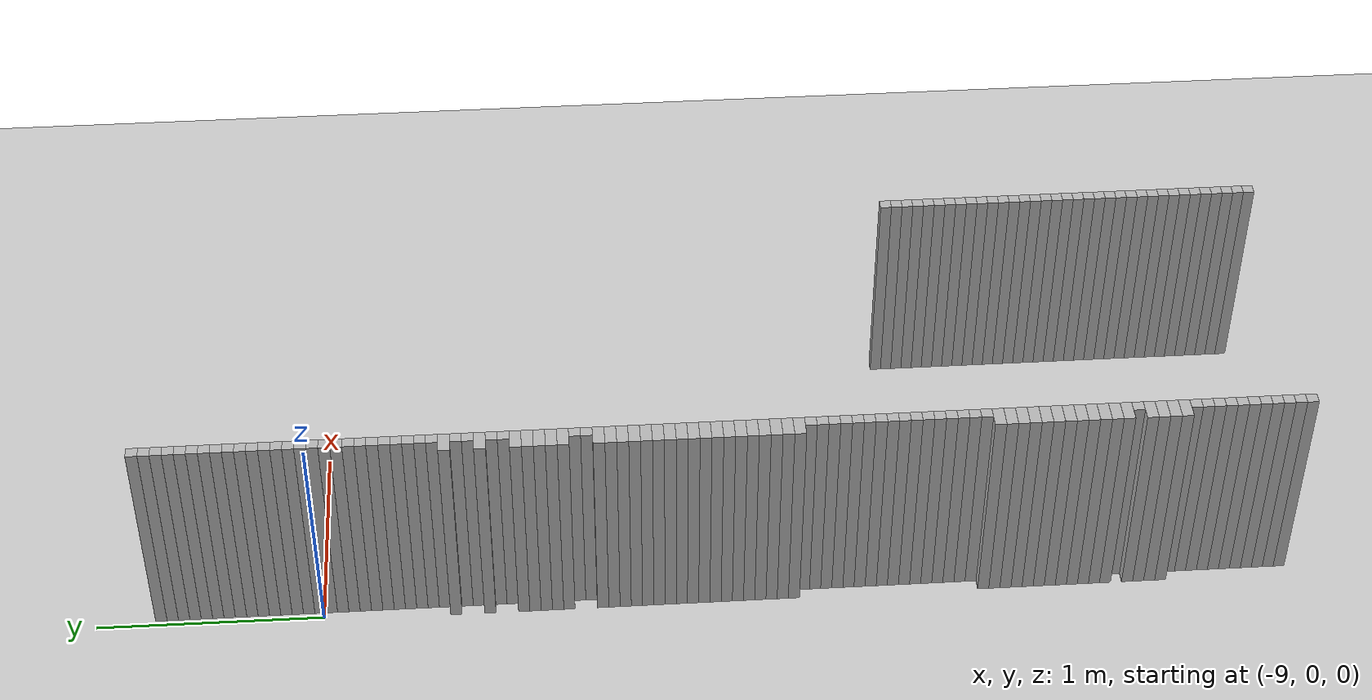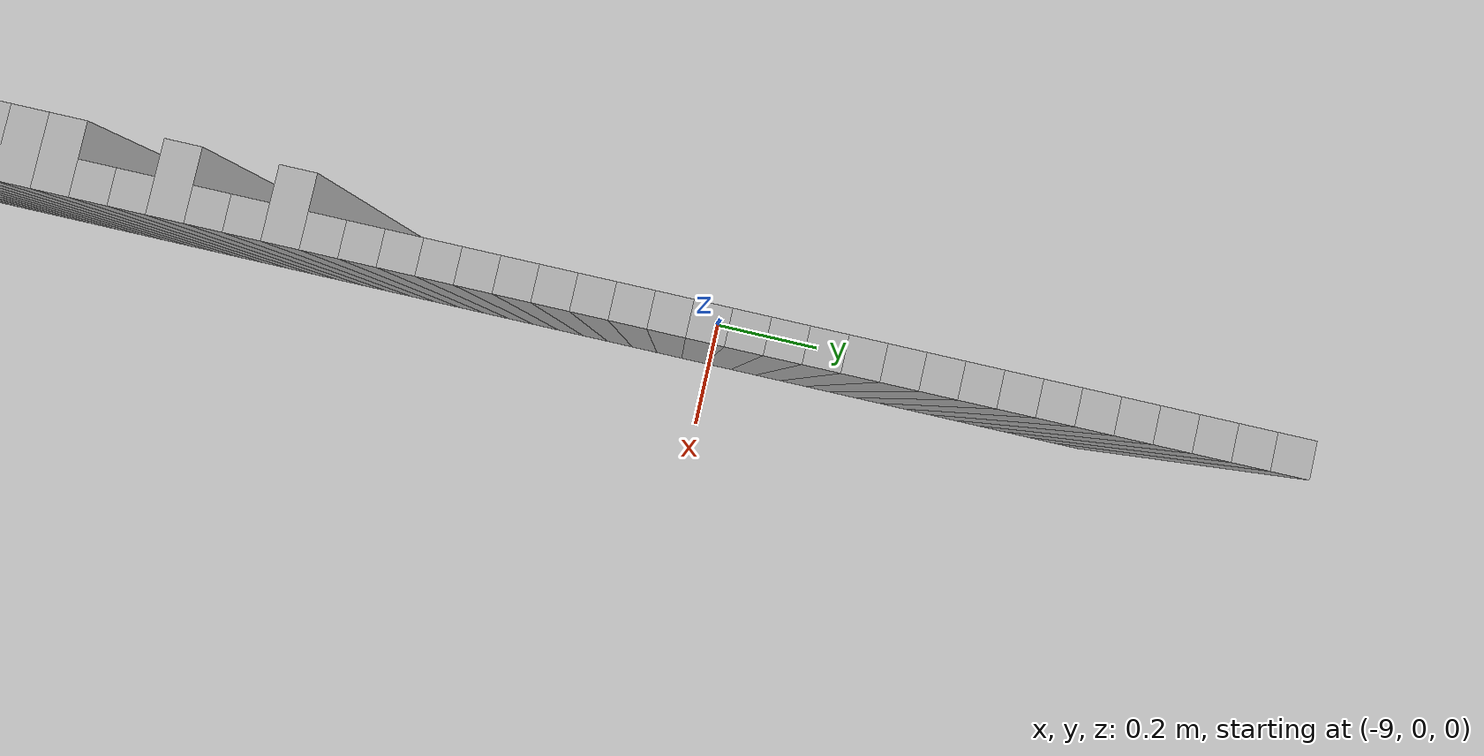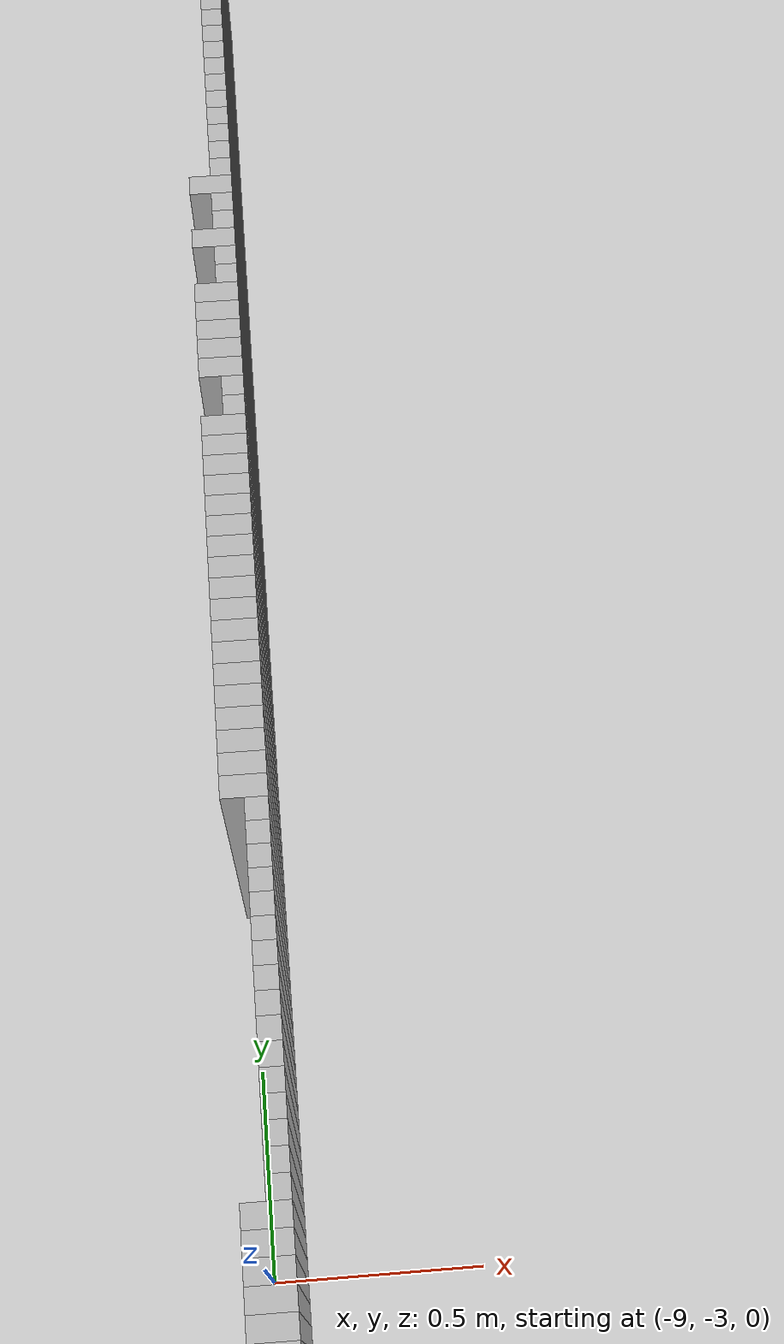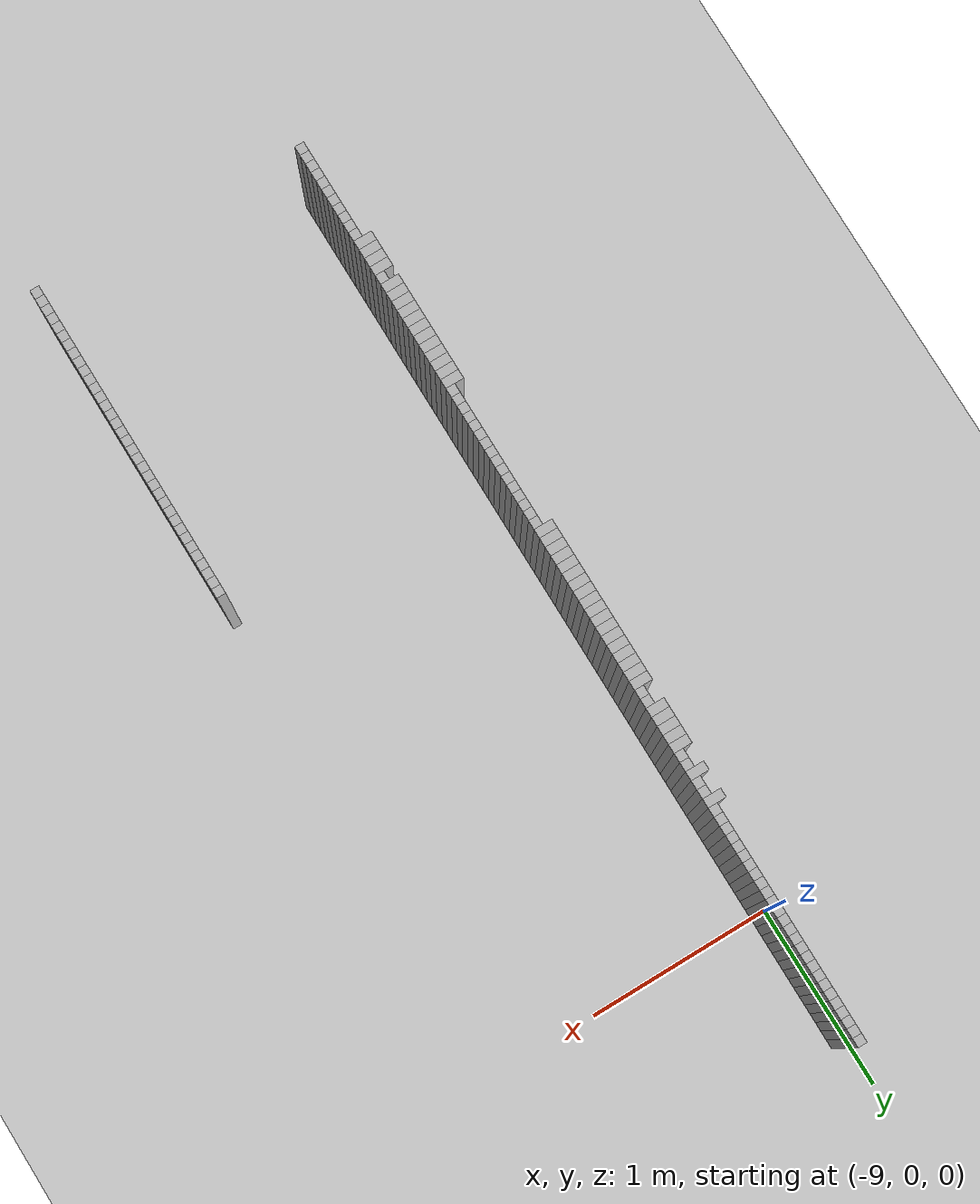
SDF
<sdf version="1.6">
 <world name="udh1_world">
  <include><uri>model://ground_plane</uri></include>
  <include><uri>model://sun</uri></include>
  <model name="wall_1352">
   <static>true</static>
   <pose>-8.945 0.7200000000000006 0.5 0 0 0</pose>
   <link name="link">
    <collision name="col"><geometry><box><size>0.05 0.05 1</size></box></geometry></collision>
    <visual name="vis"><geometry><box><size>0.05 0.05 1</size></box></geometry></visual>
   </link>
  </model>
  <model name="wall_1360">
   <static>true</static>
   <pose>-8.945 0.6699999999999999 0.5 0 0 0</pose>
   <link name="link">
    <collision name="col"><geometry><box><size>0.05 0.05 1</size></box></geometry></collision>
    <visual name="vis"><geometry><box><size>0.05 0.05 1</size></box></geometry></visual>
   </link>
  </model>
  <model name="wall_1368">
   <static>true</static>
   <pose>-8.945 0.6199999999999992 0.5 0 0 0</pose>
   <link name="link">
    <collision name="col"><geometry><box><size>0.05 0.05 1</size></box></geometry></collision>
    <visual name="vis"><geometry><box><size>0.05 0.05 1</size></box></geometry></visual>
   </link>
  </model>
  <model name="wall_1375">
   <static>true</static>
   <pose>-8.945 0.5700000000000003 0.5 0 0 0</pose>
   <link name="link">
    <collision name="col"><geometry><box><size>0.05 0.05 1</size></box></geometry></collision>
    <visual name="vis"><geometry><box><size>0.05 0.05 1</size></box></geometry></visual>
   </link>
  </model>
  <model name="wall_1382">
   <static>true</static>
   <pose>-8.945 0.5199999999999996 0.5 0 0 0</pose>
   <link name="link">
    <collision name="col"><geometry><box><size>0.05 0.05 1</size></box></geometry></collision>
    <visual name="vis"><geometry><box><size>0.05 0.05 1</size></box></geometry></visual>
   </link>
  </model>
  <model name="wall_1388">
   <static>true</static>
   <pose>-8.945 0.47000000000000064 0.5 0 0 0</pose>
   <link name="link">
    <collision name="col"><geometry><box><size>0.05 0.05 1</size></box></geometry></collision>
    <visual name="vis"><geometry><box><size>0.05 0.05 1</size></box></geometry></visual>
   </link>
  </model>
  <model name="wall_1395">
   <static>true</static>
   <pose>-8.945 0.41999999999999993 0.5 0 0 0</pose>
   <link name="link">
    <collision name="col"><geometry><box><size>0.05 0.05 1</size></box></geometry></collision>
    <visual name="vis"><geometry><box><size>0.05 0.05 1</size></box></geometry></visual>
   </link>
  </model>
  <model name="wall_1402">
   <static>true</static>
   <pose>-8.945 0.3699999999999992 0.5 0 0 0</pose>
   <link name="link">
    <collision name="col"><geometry><box><size>0.05 0.05 1</size></box></geometry></collision>
    <visual name="vis"><geometry><box><size>0.05 0.05 1</size></box></geometry></visual>
   </link>
  </model>
  <model name="wall_1409">
   <static>true</static>
   <pose>-8.945 0.3200000000000003 0.5 0 0 0</pose>
   <link name="link">
    <collision name="col"><geometry><box><size>0.05 0.05 1</size></box></geometry></collision>
    <visual name="vis"><geometry><box><size>0.05 0.05 1</size></box></geometry></visual>
   </link>
  </model>
  <model name="wall_1416">
   <static>true</static>
   <pose>-8.945 0.2699999999999996 0.5 0 0 0</pose>
   <link name="link">
    <collision name="col"><geometry><box><size>0.05 0.05 1</size></box></geometry></collision>
    <visual name="vis"><geometry><box><size>0.05 0.05 1</size></box></geometry></visual>
   </link>
  </model>
  <model name="wall_1423">
   <static>true</static>
   <pose>-8.945 0.21999999999999886 0.5 0 0 0</pose>
   <link name="link">
    <collision name="col"><geometry><box><size>0.05 0.05 1</size></box></geometry></collision>
    <visual name="vis"><geometry><box><size>0.05 0.05 1</size></box></geometry></visual>
   </link>
  </model>
  <model name="wall_1430">
   <static>true</static>
   <pose>-8.945 0.16999999999999993 0.5 0 0 0</pose>
   <link name="link">
    <collision name="col"><geometry><box><size>0.05 0.05 1</size></box></geometry></collision>
    <visual name="vis"><geometry><box><size>0.05 0.05 1</size></box></geometry></visual>
   </link>
  </model>
  <model name="wall_1437">
   <static>true</static>
   <pose>-8.945 0.11999999999999922 0.5 0 0 0</pose>
   <link name="link">
    <collision name="col"><geometry><box><size>0.05 0.05 1</size></box></geometry></collision>
    <visual name="vis"><geometry><box><size>0.05 0.05 1</size></box></geometry></visual>
   </link>
  </model>
  <model name="wall_1444">
   <static>true</static>
   <pose>-8.945 0.07000000000000028 0.5 0 0 0</pose>
   <link name="link">
    <collision name="col"><geometry><box><size>0.05 0.05 1</size></box></geometry></collision>
    <visual name="vis"><geometry><box><size>0.05 0.05 1</size></box></geometry></visual>
   </link>
  </model>
  <model name="wall_1453">
   <static>true</static>
   <pose>-8.945 0.019999999999999574 0.5 0 0 0</pose>
   <link name="link">
    <collision name="col"><geometry><box><size>0.05 0.05 1</size></box></geometry></collision>
    <visual name="vis"><geometry><box><size>0.05 0.05 1</size></box></geometry></visual>
   </link>
  </model>
  <model name="wall_1468">
   <static>true</static>
   <pose>-8.945 -0.030000000000001137 0.5 0 0 0</pose>
   <link name="link">
    <collision name="col"><geometry><box><size>0.05 0.05 1</size></box></geometry></collision>
    <visual name="vis"><geometry><box><size>0.05 0.05 1</size></box></geometry></visual>
   </link>
  </model>
  <model name="wall_1475">
   <static>true</static>
   <pose>-8.945 -0.08000000000000007 0.5 0 0 0</pose>
   <link name="link">
    <collision name="col"><geometry><box><size>0.05 0.05 1</size></box></geometry></collision>
    <visual name="vis"><geometry><box><size>0.05 0.05 1</size></box></geometry></visual>
   </link>
  </model>
  <model name="wall_1482">
   <static>true</static>
   <pose>-8.945 -0.13000000000000078 0.5 0 0 0</pose>
   <link name="link">
    <collision name="col"><geometry><box><size>0.05 0.05 1</size></box></geometry></collision>
    <visual name="vis"><geometry><box><size>0.05 0.05 1</size></box></geometry></visual>
   </link>
  </model>
  <model name="wall_1488">
   <static>true</static>
   <pose>-8.945 -0.17999999999999972 0.5 0 0 0</pose>
   <link name="link">
    <collision name="col"><geometry><box><size>0.05 0.05 1</size></box></geometry></collision>
    <visual name="vis"><geometry><box><size>0.05 0.05 1</size></box></geometry></visual>
   </link>
  </model>
  <model name="wall_1494">
   <static>true</static>
   <pose>-8.945 -0.23000000000000043 0.5 0 0 0</pose>
   <link name="link">
    <collision name="col"><geometry><box><size>0.05 0.05 1</size></box></geometry></collision>
    <visual name="vis"><geometry><box><size>0.05 0.05 1</size></box></geometry></visual>
   </link>
  </model>
  <model name="wall_1499">
   <static>true</static>
   <pose>-8.945 -0.28000000000000114 0.5 0 0 0</pose>
   <link name="link">
    <collision name="col"><geometry><box><size>0.05 0.05 1</size></box></geometry></collision>
    <visual name="vis"><geometry><box><size>0.05 0.05 1</size></box></geometry></visual>
   </link>
  </model>
  <model name="wall_1505">
   <static>true</static>
   <pose>-8.945 -0.33000000000000007 0.5 0 0 0</pose>
   <link name="link">
    <collision name="col"><geometry><box><size>0.05 0.05 1</size></box></geometry></collision>
    <visual name="vis"><geometry><box><size>0.05 0.05 1</size></box></geometry></visual>
   </link>
  </model>
  <model name="wall_1511">
   <static>true</static>
   <pose>-8.945 -0.3800000000000008 0.5 0 0 0</pose>
   <link name="link">
    <collision name="col"><geometry><box><size>0.05 0.05 1</size></box></geometry></collision>
    <visual name="vis"><geometry><box><size>0.05 0.05 1</size></box></geometry></visual>
   </link>
  </model>
  <model name="wall_1518">
   <static>true</static>
   <pose>-8.945 -0.4299999999999997 0.5 0 0 0</pose>
   <link name="link">
    <collision name="col"><geometry><box><size>0.05 0.05 1</size></box></geometry></collision>
    <visual name="vis"><geometry><box><size>0.05 0.05 1</size></box></geometry></visual>
   </link>
  </model>
  <model name="wall_1524">
   <static>true</static>
   <pose>-8.945 -0.4800000000000004 0.5 0 0 0</pose>
   <link name="link">
    <collision name="col"><geometry><box><size>0.05 0.05 1</size></box></geometry></collision>
    <visual name="vis"><geometry><box><size>0.05 0.05 1</size></box></geometry></visual>
   </link>
  </model>
  <model name="wall_1530">
   <static>true</static>
   <pose>-8.945 -0.5300000000000011 0.5 0 0 0</pose>
   <link name="link">
    <collision name="col"><geometry><box><size>0.05 0.05 1</size></box></geometry></collision>
    <visual name="vis"><geometry><box><size>0.05 0.05 1</size></box></geometry></visual>
   </link>
  </model>
  <model name="wall_1536">
   <static>true</static>
   <pose>-8.969999999999999 -0.5800000000000001 0.5 0 0 0</pose>
   <link name="link">
    <collision name="col"><geometry><box><size>0.1 0.05 1</size></box></geometry></collision>
    <visual name="vis"><geometry><box><size>0.1 0.05 1</size></box></geometry></visual>
   </link>
  </model>
  <model name="wall_1542">
   <static>true</static>
   <pose>-8.945 -0.6300000000000008 0.5 0 0 0</pose>
   <link name="link">
    <collision name="col"><geometry><box><size>0.05 0.05 1</size></box></geometry></collision>
    <visual name="vis"><geometry><box><size>0.05 0.05 1</size></box></geometry></visual>
   </link>
  </model>
  <model name="wall_1548">
   <static>true</static>
   <pose>-8.945 -0.6799999999999997 0.5 0 0 0</pose>
   <link name="link">
    <collision name="col"><geometry><box><size>0.05 0.05 1</size></box></geometry></collision>
    <visual name="vis"><geometry><box><size>0.05 0.05 1</size></box></geometry></visual>
   </link>
  </model>
  <model name="wall_1554">
   <static>true</static>
   <pose>-8.969999999999999 -0.7300000000000004 0.5 0 0 0</pose>
   <link name="link">
    <collision name="col"><geometry><box><size>0.1 0.05 1</size></box></geometry></collision>
    <visual name="vis"><geometry><box><size>0.1 0.05 1</size></box></geometry></visual>
   </link>
  </model>
  <model name="wall_1560">
   <static>true</static>
   <pose>-8.945 -0.7800000000000011 0.5 0 0 0</pose>
   <link name="link">
    <collision name="col"><geometry><box><size>0.05 0.05 1</size></box></geometry></collision>
    <visual name="vis"><geometry><box><size>0.05 0.05 1</size></box></geometry></visual>
   </link>
  </model>
  <model name="wall_1566">
   <static>true</static>
   <pose>-8.945 -0.8300000000000001 0.5 0 0 0</pose>
   <link name="link">
    <collision name="col"><geometry><box><size>0.05 0.05 1</size></box></geometry></collision>
    <visual name="vis"><geometry><box><size>0.05 0.05 1</size></box></geometry></visual>
   </link>
  </model>
  <model name="wall_1572">
   <static>true</static>
   <pose>-8.969999999999999 -0.8800000000000008 0.5 0 0 0</pose>
   <link name="link">
    <collision name="col"><geometry><box><size>0.1 0.05 1</size></box></geometry></collision>
    <visual name="vis"><geometry><box><size>0.1 0.05 1</size></box></geometry></visual>
   </link>
  </model>
  <model name="wall_1578">
   <static>true</static>
   <pose>-8.969999999999999 -0.9299999999999997 0.5 0 0 0</pose>
   <link name="link">
    <collision name="col"><geometry><box><size>0.1 0.05 1</size></box></geometry></collision>
    <visual name="vis"><geometry><box><size>0.1 0.05 1</size></box></geometry></visual>
   </link>
  </model>
  <model name="wall_1583">
   <static>true</static>
   <pose>-8.969999999999999 -0.9800000000000004 0.5 0 0 0</pose>
   <link name="link">
    <collision name="col"><geometry><box><size>0.1 0.05 1</size></box></geometry></collision>
    <visual name="vis"><geometry><box><size>0.1 0.05 1</size></box></geometry></visual>
   </link>
  </model>
  <model name="wall_1587">
   <static>true</static>
   <pose>-8.969999999999999 -1.0300000000000011 0.5 0 0 0</pose>
   <link name="link">
    <collision name="col"><geometry><box><size>0.1 0.05 1</size></box></geometry></collision>
    <visual name="vis"><geometry><box><size>0.1 0.05 1</size></box></geometry></visual>
   </link>
  </model>
  <model name="wall_1591">
   <static>true</static>
   <pose>-8.969999999999999 -1.08 0.5 0 0 0</pose>
   <link name="link">
    <collision name="col"><geometry><box><size>0.1 0.05 1</size></box></geometry></collision>
    <visual name="vis"><geometry><box><size>0.1 0.05 1</size></box></geometry></visual>
   </link>
  </model>
  <model name="wall_1595">
   <static>true</static>
   <pose>-8.945 -1.1300000000000008 0.5 0 0 0</pose>
   <link name="link">
    <collision name="col"><geometry><box><size>0.05 0.05 1</size></box></geometry></collision>
    <visual name="vis"><geometry><box><size>0.05 0.05 1</size></box></geometry></visual>
   </link>
  </model>
  <model name="wall_1599">
   <static>true</static>
   <pose>-8.945 -1.1800000000000006 0.5 0 0 0</pose>
   <link name="link">
    <collision name="col"><geometry><box><size>0.05 0.05 1</size></box></geometry></collision>
    <visual name="vis"><geometry><box><size>0.05 0.05 1</size></box></geometry></visual>
   </link>
  </model>
  <model name="wall_1603">
   <static>true</static>
   <pose>-8.969999999999999 -1.2300000000000004 0.5 0 0 0</pose>
   <link name="link">
    <collision name="col"><geometry><box><size>0.1 0.05 1</size></box></geometry></collision>
    <visual name="vis"><geometry><box><size>0.1 0.05 1</size></box></geometry></visual>
   </link>
  </model>
  <model name="wall_1607">
   <static>true</static>
   <pose>-8.969999999999999 -1.2800000000000002 0.5 0 0 0</pose>
   <link name="link">
    <collision name="col"><geometry><box><size>0.1 0.05 1</size></box></geometry></collision>
    <visual name="vis"><geometry><box><size>0.1 0.05 1</size></box></geometry></visual>
   </link>
  </model>
  <model name="wall_1611">
   <static>true</static>
   <pose>-8.969999999999999 -1.33 0.5 0 0 0</pose>
   <link name="link">
    <collision name="col"><geometry><box><size>0.1 0.05 1</size></box></geometry></collision>
    <visual name="vis"><geometry><box><size>0.1 0.05 1</size></box></geometry></visual>
   </link>
  </model>
  <model name="wall_1615">
   <static>true</static>
   <pose>-8.969999999999999 -1.3800000000000008 0.5 0 0 0</pose>
   <link name="link">
    <collision name="col"><geometry><box><size>0.1 0.05 1</size></box></geometry></collision>
    <visual name="vis"><geometry><box><size>0.1 0.05 1</size></box></geometry></visual>
   </link>
  </model>
  <model name="wall_1619">
   <static>true</static>
   <pose>-8.969999999999999 -1.4300000000000006 0.5 0 0 0</pose>
   <link name="link">
    <collision name="col"><geometry><box><size>0.1 0.05 1</size></box></geometry></collision>
    <visual name="vis"><geometry><box><size>0.1 0.05 1</size></box></geometry></visual>
   </link>
  </model>
  <model name="wall_1628">
   <static>true</static>
   <pose>-8.969999999999999 -1.4800000000000004 0.5 0 0 0</pose>
   <link name="link">
    <collision name="col"><geometry><box><size>0.1 0.05 1</size></box></geometry></collision>
    <visual name="vis"><geometry><box><size>0.1 0.05 1</size></box></geometry></visual>
   </link>
  </model>
  <model name="wall_1634">
   <static>true</static>
   <pose>-8.969999999999999 -1.5300000000000002 0.5 0 0 0</pose>
   <link name="link">
    <collision name="col"><geometry><box><size>0.1 0.05 1</size></box></geometry></collision>
    <visual name="vis"><geometry><box><size>0.1 0.05 1</size></box></geometry></visual>
   </link>
  </model>
  <model name="wall_1638">
   <static>true</static>
   <pose>-8.969999999999999 -1.58 0.5 0 0 0</pose>
   <link name="link">
    <collision name="col"><geometry><box><size>0.1 0.05 1</size></box></geometry></collision>
    <visual name="vis"><geometry><box><size>0.1 0.05 1</size></box></geometry></visual>
   </link>
  </model>
  <model name="wall_1642">
   <static>true</static>
   <pose>-8.969999999999999 -1.6300000000000008 0.5 0 0 0</pose>
   <link name="link">
    <collision name="col"><geometry><box><size>0.1 0.05 1</size></box></geometry></collision>
    <visual name="vis"><geometry><box><size>0.1 0.05 1</size></box></geometry></visual>
   </link>
  </model>
  <model name="wall_1646">
   <static>true</static>
   <pose>-8.969999999999999 -1.6800000000000006 0.5 0 0 0</pose>
   <link name="link">
    <collision name="col"><geometry><box><size>0.1 0.05 1</size></box></geometry></collision>
    <visual name="vis"><geometry><box><size>0.1 0.05 1</size></box></geometry></visual>
   </link>
  </model>
  <model name="wall_1650">
   <static>true</static>
   <pose>-8.969999999999999 -1.7300000000000004 0.5 0 0 0</pose>
   <link name="link">
    <collision name="col"><geometry><box><size>0.1 0.05 1</size></box></geometry></collision>
    <visual name="vis"><geometry><box><size>0.1 0.05 1</size></box></geometry></visual>
   </link>
  </model>
  <model name="wall_1654">
   <static>true</static>
   <pose>-8.969999999999999 -1.7800000000000002 0.5 0 0 0</pose>
   <link name="link">
    <collision name="col"><geometry><box><size>0.1 0.05 1</size></box></geometry></collision>
    <visual name="vis"><geometry><box><size>0.1 0.05 1</size></box></geometry></visual>
   </link>
  </model>
  <model name="wall_1658">
   <static>true</static>
   <pose>-8.969999999999999 -1.83 0.5 0 0 0</pose>
   <link name="link">
    <collision name="col"><geometry><box><size>0.1 0.05 1</size></box></geometry></collision>
    <visual name="vis"><geometry><box><size>0.1 0.05 1</size></box></geometry></visual>
   </link>
  </model>
  <model name="wall_1662">
   <static>true</static>
   <pose>-8.969999999999999 -1.8800000000000008 0.5 0 0 0</pose>
   <link name="link">
    <collision name="col"><geometry><box><size>0.1 0.05 1</size></box></geometry></collision>
    <visual name="vis"><geometry><box><size>0.1 0.05 1</size></box></geometry></visual>
   </link>
  </model>
  <model name="wall_1666">
   <static>true</static>
   <pose>-8.969999999999999 -1.9300000000000006 0.5 0 0 0</pose>
   <link name="link">
    <collision name="col"><geometry><box><size>0.1 0.05 1</size></box></geometry></collision>
    <visual name="vis"><geometry><box><size>0.1 0.05 1</size></box></geometry></visual>
   </link>
  </model>
  <model name="wall_1670">
   <static>true</static>
   <pose>-8.969999999999999 -1.9800000000000004 0.5 0 0 0</pose>
   <link name="link">
    <collision name="col"><geometry><box><size>0.1 0.05 1</size></box></geometry></collision>
    <visual name="vis"><geometry><box><size>0.1 0.05 1</size></box></geometry></visual>
   </link>
  </model>
  <model name="wall_1674">
   <static>true</static>
   <pose>-8.969999999999999 -2.0300000000000002 0.5 0 0 0</pose>
   <link name="link">
    <collision name="col"><geometry><box><size>0.1 0.05 1</size></box></geometry></collision>
    <visual name="vis"><geometry><box><size>0.1 0.05 1</size></box></geometry></visual>
   </link>
  </model>
  <model name="wall_1678">
   <static>true</static>
   <pose>-8.969999999999999 -2.08 0.5 0 0 0</pose>
   <link name="link">
    <collision name="col"><geometry><box><size>0.1 0.05 1</size></box></geometry></collision>
    <visual name="vis"><geometry><box><size>0.1 0.05 1</size></box></geometry></visual>
   </link>
  </model>
  <model name="wall_1682">
   <static>true</static>
   <pose>-8.945 -2.130000000000001 0.5 0 0 0</pose>
   <link name="link">
    <collision name="col"><geometry><box><size>0.05 0.05 1</size></box></geometry></collision>
    <visual name="vis"><geometry><box><size>0.05 0.05 1</size></box></geometry></visual>
   </link>
  </model>
  <model name="wall_1686">
   <static>true</static>
   <pose>-8.945 -2.1800000000000006 0.5 0 0 0</pose>
   <link name="link">
    <collision name="col"><geometry><box><size>0.05 0.05 1</size></box></geometry></collision>
    <visual name="vis"><geometry><box><size>0.05 0.05 1</size></box></geometry></visual>
   </link>
  </model>
  <model name="wall_1690">
   <static>true</static>
   <pose>-8.945 -2.2300000000000004 0.5 0 0 0</pose>
   <link name="link">
    <collision name="col"><geometry><box><size>0.05 0.05 1</size></box></geometry></collision>
    <visual name="vis"><geometry><box><size>0.05 0.05 1</size></box></geometry></visual>
   </link>
  </model>
  <model name="wall_1694">
   <static>true</static>
   <pose>-8.945 -2.2800000000000002 0.5 0 0 0</pose>
   <link name="link">
    <collision name="col"><geometry><box><size>0.05 0.05 1</size></box></geometry></collision>
    <visual name="vis"><geometry><box><size>0.05 0.05 1</size></box></geometry></visual>
   </link>
  </model>
  <model name="wall_1698">
   <static>true</static>
   <pose>-8.945 -2.33 0.5 0 0 0</pose>
   <link name="link">
    <collision name="col"><geometry><box><size>0.05 0.05 1</size></box></geometry></collision>
    <visual name="vis"><geometry><box><size>0.05 0.05 1</size></box></geometry></visual>
   </link>
  </model>
  <model name="wall_1702">
   <static>true</static>
   <pose>-8.945 -2.380000000000001 0.5 0 0 0</pose>
   <link name="link">
    <collision name="col"><geometry><box><size>0.05 0.05 1</size></box></geometry></collision>
    <visual name="vis"><geometry><box><size>0.05 0.05 1</size></box></geometry></visual>
   </link>
  </model>
  <model name="wall_1706">
   <static>true</static>
   <pose>-8.945 -2.4300000000000006 0.5 0 0 0</pose>
   <link name="link">
    <collision name="col"><geometry><box><size>0.05 0.05 1</size></box></geometry></collision>
    <visual name="vis"><geometry><box><size>0.05 0.05 1</size></box></geometry></visual>
   </link>
  </model>
  <model name="wall_1710">
   <static>true</static>
   <pose>-8.945 -2.4800000000000004 0.5 0 0 0</pose>
   <link name="link">
    <collision name="col"><geometry><box><size>0.05 0.05 1</size></box></geometry></collision>
    <visual name="vis"><geometry><box><size>0.05 0.05 1</size></box></geometry></visual>
   </link>
  </model>
  <model name="wall_1714">
   <static>true</static>
   <pose>-8.945 -2.5300000000000002 0.5 0 0 0</pose>
   <link name="link">
    <collision name="col"><geometry><box><size>0.05 0.05 1</size></box></geometry></collision>
    <visual name="vis"><geometry><box><size>0.05 0.05 1</size></box></geometry></visual>
   </link>
  </model>
  <model name="wall_1721">
   <static>true</static>
   <pose>-8.945 -2.58 0.5 0 0 0</pose>
   <link name="link">
    <collision name="col"><geometry><box><size>0.05 0.05 1</size></box></geometry></collision>
    <visual name="vis"><geometry><box><size>0.05 0.05 1</size></box></geometry></visual>
   </link>
  </model>
  <model name="wall_1726">
   <static>true</static>
   <pose>-8.945 -2.630000000000001 0.5 0 0 0</pose>
   <link name="link">
    <collision name="col"><geometry><box><size>0.05 0.05 1</size></box></geometry></collision>
    <visual name="vis"><geometry><box><size>0.05 0.05 1</size></box></geometry></visual>
   </link>
  </model>
  <model name="wall_1727">
   <static>true</static>
   <pose>-7.494999999999999 -2.630000000000001 0.5 0 0 0</pose>
   <link name="link">
    <collision name="col"><geometry><box><size>0.05 0.05 1</size></box></geometry></collision>
    <visual name="vis"><geometry><box><size>0.05 0.05 1</size></box></geometry></visual>
   </link>
  </model>
  <model name="wall_1732">
   <static>true</static>
   <pose>-8.945 -2.6800000000000006 0.5 0 0 0</pose>
   <link name="link">
    <collision name="col"><geometry><box><size>0.05 0.05 1</size></box></geometry></collision>
    <visual name="vis"><geometry><box><size>0.05 0.05 1</size></box></geometry></visual>
   </link>
  </model>
  <model name="wall_1733">
   <static>true</static>
   <pose>-7.494999999999999 -2.6800000000000006 0.5 0 0 0</pose>
   <link name="link">
    <collision name="col"><geometry><box><size>0.05 0.05 1</size></box></geometry></collision>
    <visual name="vis"><geometry><box><size>0.05 0.05 1</size></box></geometry></visual>
   </link>
  </model>
  <model name="wall_1738">
   <static>true</static>
   <pose>-8.945 -2.7300000000000004 0.5 0 0 0</pose>
   <link name="link">
    <collision name="col"><geometry><box><size>0.05 0.05 1</size></box></geometry></collision>
    <visual name="vis"><geometry><box><size>0.05 0.05 1</size></box></geometry></visual>
   </link>
  </model>
  <model name="wall_1739">
   <static>true</static>
   <pose>-7.494999999999999 -2.7300000000000004 0.5 0 0 0</pose>
   <link name="link">
    <collision name="col"><geometry><box><size>0.05 0.05 1</size></box></geometry></collision>
    <visual name="vis"><geometry><box><size>0.05 0.05 1</size></box></geometry></visual>
   </link>
  </model>
  <model name="wall_1744">
   <static>true</static>
   <pose>-8.945 -2.7800000000000002 0.5 0 0 0</pose>
   <link name="link">
    <collision name="col"><geometry><box><size>0.05 0.05 1</size></box></geometry></collision>
    <visual name="vis"><geometry><box><size>0.05 0.05 1</size></box></geometry></visual>
   </link>
  </model>
  <model name="wall_1745">
   <static>true</static>
   <pose>-7.494999999999999 -2.7800000000000002 0.5 0 0 0</pose>
   <link name="link">
    <collision name="col"><geometry><box><size>0.05 0.05 1</size></box></geometry></collision>
    <visual name="vis"><geometry><box><size>0.05 0.05 1</size></box></geometry></visual>
   </link>
  </model>
  <model name="wall_1750">
   <static>true</static>
   <pose>-8.945 -2.83 0.5 0 0 0</pose>
   <link name="link">
    <collision name="col"><geometry><box><size>0.05 0.05 1</size></box></geometry></collision>
    <visual name="vis"><geometry><box><size>0.05 0.05 1</size></box></geometry></visual>
   </link>
  </model>
  <model name="wall_1751">
   <static>true</static>
   <pose>-7.494999999999999 -2.83 0.5 0 0 0</pose>
   <link name="link">
    <collision name="col"><geometry><box><size>0.05 0.05 1</size></box></geometry></collision>
    <visual name="vis"><geometry><box><size>0.05 0.05 1</size></box></geometry></visual>
   </link>
  </model>
  <model name="wall_1756">
   <static>true</static>
   <pose>-8.945 -2.880000000000001 0.5 0 0 0</pose>
   <link name="link">
    <collision name="col"><geometry><box><size>0.05 0.05 1</size></box></geometry></collision>
    <visual name="vis"><geometry><box><size>0.05 0.05 1</size></box></geometry></visual>
   </link>
  </model>
  <model name="wall_1757">
   <static>true</static>
   <pose>-7.494999999999999 -2.880000000000001 0.5 0 0 0</pose>
   <link name="link">
    <collision name="col"><geometry><box><size>0.05 0.05 1</size></box></geometry></collision>
    <visual name="vis"><geometry><box><size>0.05 0.05 1</size></box></geometry></visual>
   </link>
  </model>
  <model name="wall_1762">
   <static>true</static>
   <pose>-8.969999999999999 -2.9300000000000006 0.5 0 0 0</pose>
   <link name="link">
    <collision name="col"><geometry><box><size>0.1 0.05 1</size></box></geometry></collision>
    <visual name="vis"><geometry><box><size>0.1 0.05 1</size></box></geometry></visual>
   </link>
  </model>
  <model name="wall_1763">
   <static>true</static>
   <pose>-7.494999999999999 -2.9300000000000006 0.5 0 0 0</pose>
   <link name="link">
    <collision name="col"><geometry><box><size>0.05 0.05 1</size></box></geometry></collision>
    <visual name="vis"><geometry><box><size>0.05 0.05 1</size></box></geometry></visual>
   </link>
  </model>
  <model name="wall_1768">
   <static>true</static>
   <pose>-8.969999999999999 -2.9800000000000004 0.5 0 0 0</pose>
   <link name="link">
    <collision name="col"><geometry><box><size>0.1 0.05 1</size></box></geometry></collision>
    <visual name="vis"><geometry><box><size>0.1 0.05 1</size></box></geometry></visual>
   </link>
  </model>
  <model name="wall_1769">
   <static>true</static>
   <pose>-7.494999999999999 -2.9800000000000004 0.5 0 0 0</pose>
   <link name="link">
    <collision name="col"><geometry><box><size>0.05 0.05 1</size></box></geometry></collision>
    <visual name="vis"><geometry><box><size>0.05 0.05 1</size></box></geometry></visual>
   </link>
  </model>
  <model name="wall_1774">
   <static>true</static>
   <pose>-8.969999999999999 -3.0300000000000002 0.5 0 0 0</pose>
   <link name="link">
    <collision name="col"><geometry><box><size>0.1 0.05 1</size></box></geometry></collision>
    <visual name="vis"><geometry><box><size>0.1 0.05 1</size></box></geometry></visual>
   </link>
  </model>
  <model name="wall_1775">
   <static>true</static>
   <pose>-7.494999999999999 -3.0300000000000002 0.5 0 0 0</pose>
   <link name="link">
    <collision name="col"><geometry><box><size>0.05 0.05 1</size></box></geometry></collision>
    <visual name="vis"><geometry><box><size>0.05 0.05 1</size></box></geometry></visual>
   </link>
  </model>
  <model name="wall_1780">
   <static>true</static>
   <pose>-8.969999999999999 -3.08 0.5 0 0 0</pose>
   <link name="link">
    <collision name="col"><geometry><box><size>0.1 0.05 1</size></box></geometry></collision>
    <visual name="vis"><geometry><box><size>0.1 0.05 1</size></box></geometry></visual>
   </link>
  </model>
  <model name="wall_1781">
   <static>true</static>
   <pose>-7.494999999999999 -3.08 0.5 0 0 0</pose>
   <link name="link">
    <collision name="col"><geometry><box><size>0.05 0.05 1</size></box></geometry></collision>
    <visual name="vis"><geometry><box><size>0.05 0.05 1</size></box></geometry></visual>
   </link>
  </model>
  <model name="wall_1786">
   <static>true</static>
   <pose>-8.969999999999999 -3.130000000000001 0.5 0 0 0</pose>
   <link name="link">
    <collision name="col"><geometry><box><size>0.1 0.05 1</size></box></geometry></collision>
    <visual name="vis"><geometry><box><size>0.1 0.05 1</size></box></geometry></visual>
   </link>
  </model>
  <model name="wall_1787">
   <static>true</static>
   <pose>-7.494999999999999 -3.130000000000001 0.5 0 0 0</pose>
   <link name="link">
    <collision name="col"><geometry><box><size>0.05 0.05 1</size></box></geometry></collision>
    <visual name="vis"><geometry><box><size>0.05 0.05 1</size></box></geometry></visual>
   </link>
  </model>
  <model name="wall_1792">
   <static>true</static>
   <pose>-8.969999999999999 -3.1800000000000006 0.5 0 0 0</pose>
   <link name="link">
    <collision name="col"><geometry><box><size>0.1 0.05 1</size></box></geometry></collision>
    <visual name="vis"><geometry><box><size>0.1 0.05 1</size></box></geometry></visual>
   </link>
  </model>
  <model name="wall_1793">
   <static>true</static>
   <pose>-7.494999999999999 -3.1800000000000006 0.5 0 0 0</pose>
   <link name="link">
    <collision name="col"><geometry><box><size>0.05 0.05 1</size></box></geometry></collision>
    <visual name="vis"><geometry><box><size>0.05 0.05 1</size></box></geometry></visual>
   </link>
  </model>
  <model name="wall_1798">
   <static>true</static>
   <pose>-8.969999999999999 -3.2300000000000004 0.5 0 0 0</pose>
   <link name="link">
    <collision name="col"><geometry><box><size>0.1 0.05 1</size></box></geometry></collision>
    <visual name="vis"><geometry><box><size>0.1 0.05 1</size></box></geometry></visual>
   </link>
  </model>
  <model name="wall_1799">
   <static>true</static>
   <pose>-7.494999999999999 -3.2300000000000004 0.5 0 0 0</pose>
   <link name="link">
    <collision name="col"><geometry><box><size>0.05 0.05 1</size></box></geometry></collision>
    <visual name="vis"><geometry><box><size>0.05 0.05 1</size></box></geometry></visual>
   </link>
  </model>
  <model name="wall_1804">
   <static>true</static>
   <pose>-8.969999999999999 -3.2800000000000002 0.5 0 0 0</pose>
   <link name="link">
    <collision name="col"><geometry><box><size>0.1 0.05 1</size></box></geometry></collision>
    <visual name="vis"><geometry><box><size>0.1 0.05 1</size></box></geometry></visual>
   </link>
  </model>
  <model name="wall_1805">
   <static>true</static>
   <pose>-7.494999999999999 -3.2800000000000002 0.5 0 0 0</pose>
   <link name="link">
    <collision name="col"><geometry><box><size>0.05 0.05 1</size></box></geometry></collision>
    <visual name="vis"><geometry><box><size>0.05 0.05 1</size></box></geometry></visual>
   </link>
  </model>
  <model name="wall_1810">
   <static>true</static>
   <pose>-8.969999999999999 -3.33 0.5 0 0 0</pose>
   <link name="link">
    <collision name="col"><geometry><box><size>0.1 0.05 1</size></box></geometry></collision>
    <visual name="vis"><geometry><box><size>0.1 0.05 1</size></box></geometry></visual>
   </link>
  </model>
  <model name="wall_1811">
   <static>true</static>
   <pose>-7.494999999999999 -3.33 0.5 0 0 0</pose>
   <link name="link">
    <collision name="col"><geometry><box><size>0.05 0.05 1</size></box></geometry></collision>
    <visual name="vis"><geometry><box><size>0.05 0.05 1</size></box></geometry></visual>
   </link>
  </model>
  <model name="wall_1816">
   <static>true</static>
   <pose>-8.969999999999999 -3.380000000000001 0.5 0 0 0</pose>
   <link name="link">
    <collision name="col"><geometry><box><size>0.1 0.05 1</size></box></geometry></collision>
    <visual name="vis"><geometry><box><size>0.1 0.05 1</size></box></geometry></visual>
   </link>
  </model>
  <model name="wall_1817">
   <static>true</static>
   <pose>-7.494999999999999 -3.380000000000001 0.5 0 0 0</pose>
   <link name="link">
    <collision name="col"><geometry><box><size>0.05 0.05 1</size></box></geometry></collision>
    <visual name="vis"><geometry><box><size>0.05 0.05 1</size></box></geometry></visual>
   </link>
  </model>
  <model name="wall_1822">
   <static>true</static>
   <pose>-8.969999999999999 -3.4300000000000006 0.5 0 0 0</pose>
   <link name="link">
    <collision name="col"><geometry><box><size>0.1 0.05 1</size></box></geometry></collision>
    <visual name="vis"><geometry><box><size>0.1 0.05 1</size></box></geometry></visual>
   </link>
  </model>
  <model name="wall_1823">
   <static>true</static>
   <pose>-7.494999999999999 -3.4300000000000006 0.5 0 0 0</pose>
   <link name="link">
    <collision name="col"><geometry><box><size>0.05 0.05 1</size></box></geometry></collision>
    <visual name="vis"><geometry><box><size>0.05 0.05 1</size></box></geometry></visual>
   </link>
  </model>
  <model name="wall_1828">
   <static>true</static>
   <pose>-8.969999999999999 -3.4800000000000004 0.5 0 0 0</pose>
   <link name="link">
    <collision name="col"><geometry><box><size>0.1 0.05 1</size></box></geometry></collision>
    <visual name="vis"><geometry><box><size>0.1 0.05 1</size></box></geometry></visual>
   </link>
  </model>
  <model name="wall_1829">
   <static>true</static>
   <pose>-7.494999999999999 -3.4800000000000004 0.5 0 0 0</pose>
   <link name="link">
    <collision name="col"><geometry><box><size>0.05 0.05 1</size></box></geometry></collision>
    <visual name="vis"><geometry><box><size>0.05 0.05 1</size></box></geometry></visual>
   </link>
  </model>
  <model name="wall_1842">
   <static>true</static>
   <pose>-8.945 -3.5300000000000002 0.5 0 0 0</pose>
   <link name="link">
    <collision name="col"><geometry><box><size>0.05 0.05 1</size></box></geometry></collision>
    <visual name="vis"><geometry><box><size>0.05 0.05 1</size></box></geometry></visual>
   </link>
  </model>
  <model name="wall_1843">
   <static>true</static>
   <pose>-7.494999999999999 -3.5300000000000002 0.5 0 0 0</pose>
   <link name="link">
    <collision name="col"><geometry><box><size>0.05 0.05 1</size></box></geometry></collision>
    <visual name="vis"><geometry><box><size>0.05 0.05 1</size></box></geometry></visual>
   </link>
  </model>
  <model name="wall_1848">
   <static>true</static>
   <pose>-8.969999999999999 -3.58 0.5 0 0 0</pose>
   <link name="link">
    <collision name="col"><geometry><box><size>0.1 0.05 1</size></box></geometry></collision>
    <visual name="vis"><geometry><box><size>0.1 0.05 1</size></box></geometry></visual>
   </link>
  </model>
  <model name="wall_1849">
   <static>true</static>
   <pose>-7.494999999999999 -3.58 0.5 0 0 0</pose>
   <link name="link">
    <collision name="col"><geometry><box><size>0.05 0.05 1</size></box></geometry></collision>
    <visual name="vis"><geometry><box><size>0.05 0.05 1</size></box></geometry></visual>
   </link>
  </model>
  <model name="wall_1854">
   <static>true</static>
   <pose>-8.969999999999999 -3.630000000000001 0.5 0 0 0</pose>
   <link name="link">
    <collision name="col"><geometry><box><size>0.1 0.05 1</size></box></geometry></collision>
    <visual name="vis"><geometry><box><size>0.1 0.05 1</size></box></geometry></visual>
   </link>
  </model>
  <model name="wall_1855">
   <static>true</static>
   <pose>-7.494999999999999 -3.630000000000001 0.5 0 0 0</pose>
   <link name="link">
    <collision name="col"><geometry><box><size>0.05 0.05 1</size></box></geometry></collision>
    <visual name="vis"><geometry><box><size>0.05 0.05 1</size></box></geometry></visual>
   </link>
  </model>
  <model name="wall_1860">
   <static>true</static>
   <pose>-8.969999999999999 -3.6800000000000006 0.5 0 0 0</pose>
   <link name="link">
    <collision name="col"><geometry><box><size>0.1 0.05 1</size></box></geometry></collision>
    <visual name="vis"><geometry><box><size>0.1 0.05 1</size></box></geometry></visual>
   </link>
  </model>
  <model name="wall_1861">
   <static>true</static>
   <pose>-7.494999999999999 -3.6800000000000006 0.5 0 0 0</pose>
   <link name="link">
    <collision name="col"><geometry><box><size>0.05 0.05 1</size></box></geometry></collision>
    <visual name="vis"><geometry><box><size>0.05 0.05 1</size></box></geometry></visual>
   </link>
  </model>
  <model name="wall_1866">
   <static>true</static>
   <pose>-8.969999999999999 -3.7300000000000004 0.5 0 0 0</pose>
   <link name="link">
    <collision name="col"><geometry><box><size>0.1 0.05 1</size></box></geometry></collision>
    <visual name="vis"><geometry><box><size>0.1 0.05 1</size></box></geometry></visual>
   </link>
  </model>
  <model name="wall_1867">
   <static>true</static>
   <pose>-7.494999999999999 -3.7300000000000004 0.5 0 0 0</pose>
   <link name="link">
    <collision name="col"><geometry><box><size>0.05 0.05 1</size></box></geometry></collision>
    <visual name="vis"><geometry><box><size>0.05 0.05 1</size></box></geometry></visual>
   </link>
  </model>
  <model name="wall_1872">
   <static>true</static>
   <pose>-8.945 -3.7800000000000002 0.5 0 0 0</pose>
   <link name="link">
    <collision name="col"><geometry><box><size>0.05 0.05 1</size></box></geometry></collision>
    <visual name="vis"><geometry><box><size>0.05 0.05 1</size></box></geometry></visual>
   </link>
  </model>
  <model name="wall_1873">
   <static>true</static>
   <pose>-7.494999999999999 -3.7800000000000002 0.5 0 0 0</pose>
   <link name="link">
    <collision name="col"><geometry><box><size>0.05 0.05 1</size></box></geometry></collision>
    <visual name="vis"><geometry><box><size>0.05 0.05 1</size></box></geometry></visual>
   </link>
  </model>
  <model name="wall_1878">
   <static>true</static>
   <pose>-8.945 -3.83 0.5 0 0 0</pose>
   <link name="link">
    <collision name="col"><geometry><box><size>0.05 0.05 1</size></box></geometry></collision>
    <visual name="vis"><geometry><box><size>0.05 0.05 1</size></box></geometry></visual>
   </link>
  </model>
  <model name="wall_1879">
   <static>true</static>
   <pose>-7.494999999999999 -3.83 0.5 0 0 0</pose>
   <link name="link">
    <collision name="col"><geometry><box><size>0.05 0.05 1</size></box></geometry></collision>
    <visual name="vis"><geometry><box><size>0.05 0.05 1</size></box></geometry></visual>
   </link>
  </model>
  <model name="wall_1884">
   <static>true</static>
   <pose>-8.945 -3.880000000000001 0.5 0 0 0</pose>
   <link name="link">
    <collision name="col"><geometry><box><size>0.05 0.05 1</size></box></geometry></collision>
    <visual name="vis"><geometry><box><size>0.05 0.05 1</size></box></geometry></visual>
   </link>
  </model>
  <model name="wall_1885">
   <static>true</static>
   <pose>-7.494999999999999 -3.880000000000001 0.5 0 0 0</pose>
   <link name="link">
    <collision name="col"><geometry><box><size>0.05 0.05 1</size></box></geometry></collision>
    <visual name="vis"><geometry><box><size>0.05 0.05 1</size></box></geometry></visual>
   </link>
  </model>
  <model name="wall_1890">
   <static>true</static>
   <pose>-8.945 -3.9300000000000006 0.5 0 0 0</pose>
   <link name="link">
    <collision name="col"><geometry><box><size>0.05 0.05 1</size></box></geometry></collision>
    <visual name="vis"><geometry><box><size>0.05 0.05 1</size></box></geometry></visual>
   </link>
  </model>
  <model name="wall_1891">
   <static>true</static>
   <pose>-7.494999999999999 -3.9300000000000006 0.5 0 0 0</pose>
   <link name="link">
    <collision name="col"><geometry><box><size>0.05 0.05 1</size></box></geometry></collision>
    <visual name="vis"><geometry><box><size>0.05 0.05 1</size></box></geometry></visual>
   </link>
  </model>
  <model name="wall_1897">
   <static>true</static>
   <pose>-8.945 -3.9800000000000004 0.5 0 0 0</pose>
   <link name="link">
    <collision name="col"><geometry><box><size>0.05 0.05 1</size></box></geometry></collision>
    <visual name="vis"><geometry><box><size>0.05 0.05 1</size></box></geometry></visual>
   </link>
  </model>
  <model name="wall_1898">
   <static>true</static>
   <pose>-7.494999999999999 -3.9800000000000004 0.5 0 0 0</pose>
   <link name="link">
    <collision name="col"><geometry><box><size>0.05 0.05 1</size></box></geometry></collision>
    <visual name="vis"><geometry><box><size>0.05 0.05 1</size></box></geometry></visual>
   </link>
  </model>
  <model name="wall_1906">
   <static>true</static>
   <pose>-8.945 -4.03 0.5 0 0 0</pose>
   <link name="link">
    <collision name="col"><geometry><box><size>0.05 0.05 1</size></box></geometry></collision>
    <visual name="vis"><geometry><box><size>0.05 0.05 1</size></box></geometry></visual>
   </link>
  </model>
  <model name="wall_1907">
   <static>true</static>
   <pose>-7.494999999999999 -4.03 0.5 0 0 0</pose>
   <link name="link">
    <collision name="col"><geometry><box><size>0.05 0.05 1</size></box></geometry></collision>
    <visual name="vis"><geometry><box><size>0.05 0.05 1</size></box></geometry></visual>
   </link>
  </model>
  <model name="wall_1914">
   <static>true</static>
   <pose>-8.945 -4.08 0.5 0 0 0</pose>
   <link name="link">
    <collision name="col"><geometry><box><size>0.05 0.05 1</size></box></geometry></collision>
    <visual name="vis"><geometry><box><size>0.05 0.05 1</size></box></geometry></visual>
   </link>
  </model>
  <model name="wall_1915">
   <static>true</static>
   <pose>-7.494999999999999 -4.08 0.5 0 0 0</pose>
   <link name="link">
    <collision name="col"><geometry><box><size>0.05 0.05 1</size></box></geometry></collision>
    <visual name="vis"><geometry><box><size>0.05 0.05 1</size></box></geometry></visual>
   </link>
  </model>
  <model name="wall_1922">
   <static>true</static>
   <pose>-8.945 -4.130000000000001 0.5 0 0 0</pose>
   <link name="link">
    <collision name="col"><geometry><box><size>0.05 0.05 1</size></box></geometry></collision>
    <visual name="vis"><geometry><box><size>0.05 0.05 1</size></box></geometry></visual>
   </link>
  </model>
  <model name="wall_1923">
   <static>true</static>
   <pose>-7.494999999999999 -4.130000000000001 0.5 0 0 0</pose>
   <link name="link">
    <collision name="col"><geometry><box><size>0.05 0.05 1</size></box></geometry></collision>
    <visual name="vis"><geometry><box><size>0.05 0.05 1</size></box></geometry></visual>
   </link>
  </model>
  <model name="wall_1930">
   <static>true</static>
   <pose>-8.945 -4.180000000000001 0.5 0 0 0</pose>
   <link name="link">
    <collision name="col"><geometry><box><size>0.05 0.05 1</size></box></geometry></collision>
    <visual name="vis"><geometry><box><size>0.05 0.05 1</size></box></geometry></visual>
   </link>
  </model>
  <model name="wall_1931">
   <static>true</static>
   <pose>-7.494999999999999 -4.180000000000001 0.5 0 0 0</pose>
   <link name="link">
    <collision name="col"><geometry><box><size>0.05 0.05 1</size></box></geometry></collision>
    <visual name="vis"><geometry><box><size>0.05 0.05 1</size></box></geometry></visual>
   </link>
  </model>
  <model name="wall_1938">
   <static>true</static>
   <pose>-8.945 -4.23 0.5 0 0 0</pose>
   <link name="link">
    <collision name="col"><geometry><box><size>0.05 0.05 1</size></box></geometry></collision>
    <visual name="vis"><geometry><box><size>0.05 0.05 1</size></box></geometry></visual>
   </link>
  </model>
  <model name="wall_1939">
   <static>true</static>
   <pose>-7.494999999999999 -4.23 0.5 0 0 0</pose>
   <link name="link">
    <collision name="col"><geometry><box><size>0.05 0.05 1</size></box></geometry></collision>
    <visual name="vis"><geometry><box><size>0.05 0.05 1</size></box></geometry></visual>
   </link>
  </model>
  <model name="wall_1946">
   <static>true</static>
   <pose>-8.945 -4.28 0.5 0 0 0</pose>
   <link name="link">
    <collision name="col"><geometry><box><size>0.05 0.05 1</size></box></geometry></collision>
    <visual name="vis"><geometry><box><size>0.05 0.05 1</size></box></geometry></visual>
   </link>
  </model>
  <model name="wall_1947">
   <static>true</static>
   <pose>-7.494999999999999 -4.28 0.5 0 0 0</pose>
   <link name="link">
    <collision name="col"><geometry><box><size>0.05 0.05 1</size></box></geometry></collision>
    <visual name="vis"><geometry><box><size>0.05 0.05 1</size></box></geometry></visual>
   </link>
  </model>
  <model name="wall_1955">
   <static>true</static>
   <pose>-7.494999999999999 -4.33 0.5 0 0 0</pose>
   <link name="link">
    <collision name="col"><geometry><box><size>0.05 0.05 1</size></box></geometry></collision>
    <visual name="vis"><geometry><box><size>0.05 0.05 1</size></box></geometry></visual>
   </link>
  </model>
 </world>
</sdf>
